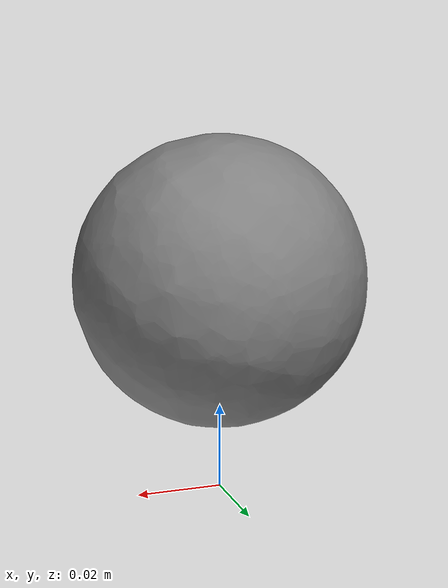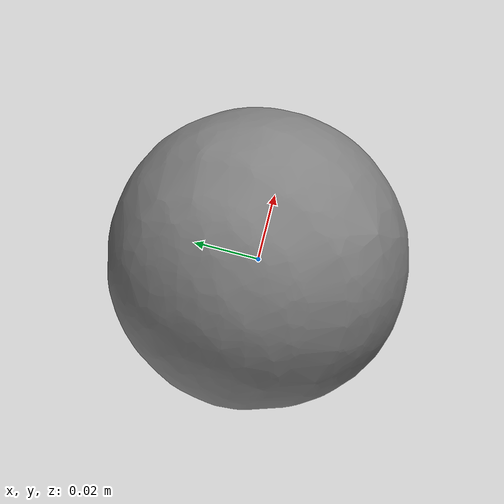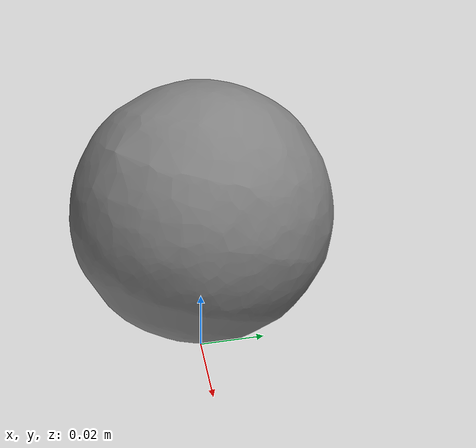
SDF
<sdf version="1.6">
  <model name="object">
    <pose frame="">0, 0, 0.05, 0, 0, 0</pose>
    <link name="body">
      <inertial>
        <mass>0.1</mass>
        <pose frame=""> 2.61056104e-05  7.66041721e-05 -2.46420888e-04</pose>
        <inertia>
          <ixx>7.01254705859824e-08</ixx>
          <ixy>-1.1009005628563783e-11</ixy>
          <ixz>-1.468523110818895e-10</ixz>
          <iyy>7.006178490553519e-08</iyy>
          <iyz>-7.038561005000552e-11</iyz>
          <izz>7.027559076420809e-08</izz>
        </inertia>
      </inertial>
      <self_collide>0</self_collide>
      <enable_wind>0</enable_wind>
      <kinematic>0</kinematic>
      <pose frame="">0 0 0 0 -0 0</pose>
      <gravity>1</gravity>
      <visual name="visual">
        <geometry>
          <mesh>
            <uri>cvx_yball.stl</uri>
          </mesh>
        </geometry>
             <material>
      <ambient>0.19225 0.19225 0.19225 1.0</ambient>
      <diffuse>0.50754 0.50754 0.50754 1.0</diffuse>
      <specular>0.508273 0.508273 0.508273 1.0</specular>
      <emissive>0.0 0.0 0.0 0.0</emissive>
    </material>
        <pose frame="">0 0 0 0 -0 0</pose>
        <transparency>0</transparency>
        <cast_shadows>1</cast_shadows>
      </visual>
      <collision name="box_01_geom">
        <laser_retro>0</laser_retro>
        <max_contacts>10</max_contacts>
        <pose frame="">0 0 0 0 -0 0</pose>
        <geometry>
          <mesh>
            <uri>cvx_yball.stl</uri>
            <scale>1 1 1</scale>
          </mesh>
        </geometry>
        <surface>

            <contact>
            <collide_without_contact>0</collide_without_contact>
            <collide_without_contact_bitmask>1</collide_without_contact_bitmask>
            <collide_bitmask>1</collide_bitmask>

          </contact>
        </surface>
      </collision>
    </link>
    <static>0</static>
    <allow_auto_disable>0</allow_auto_disable>
  </model>
</sdf>
